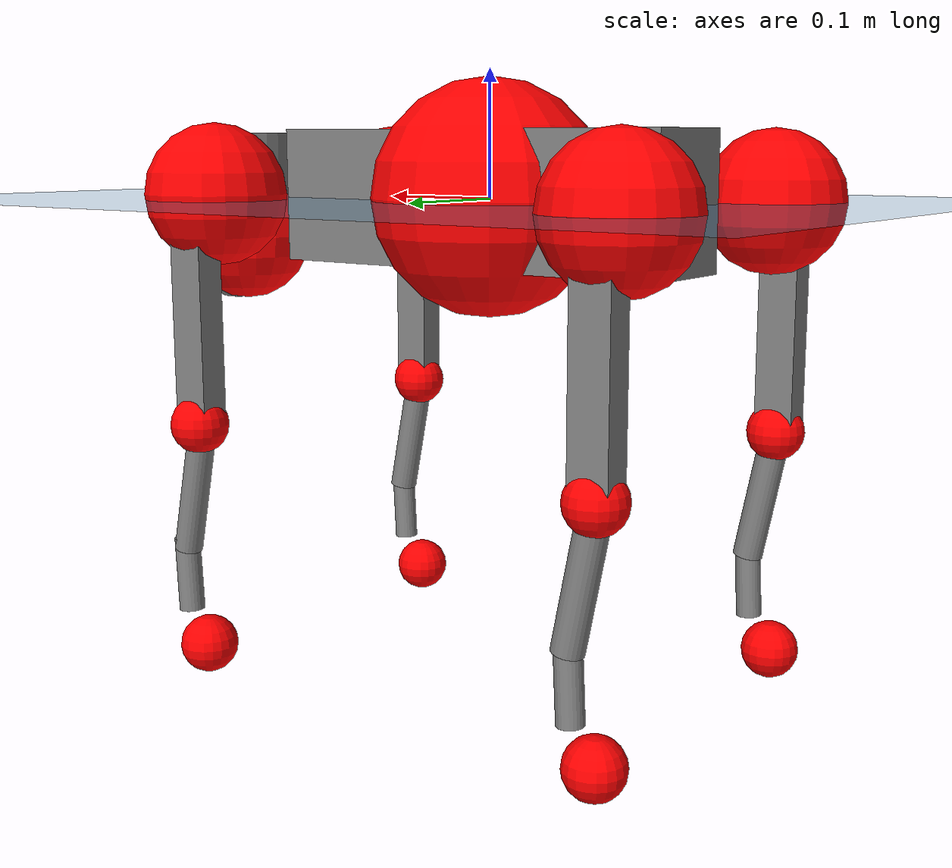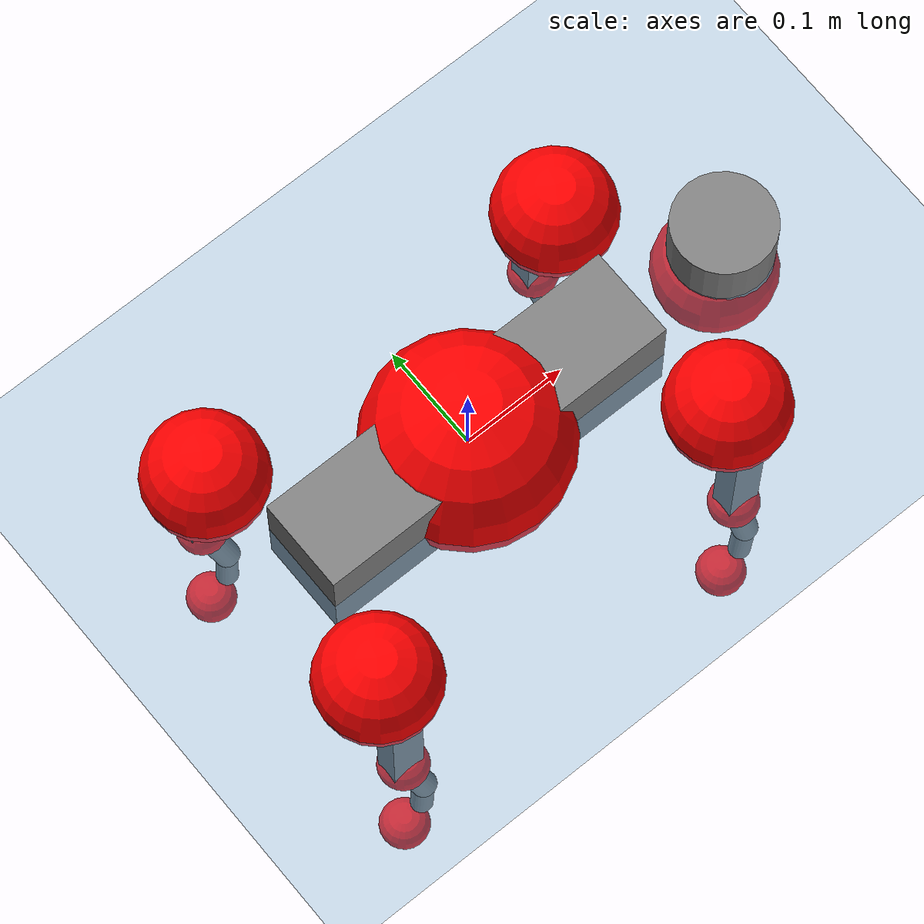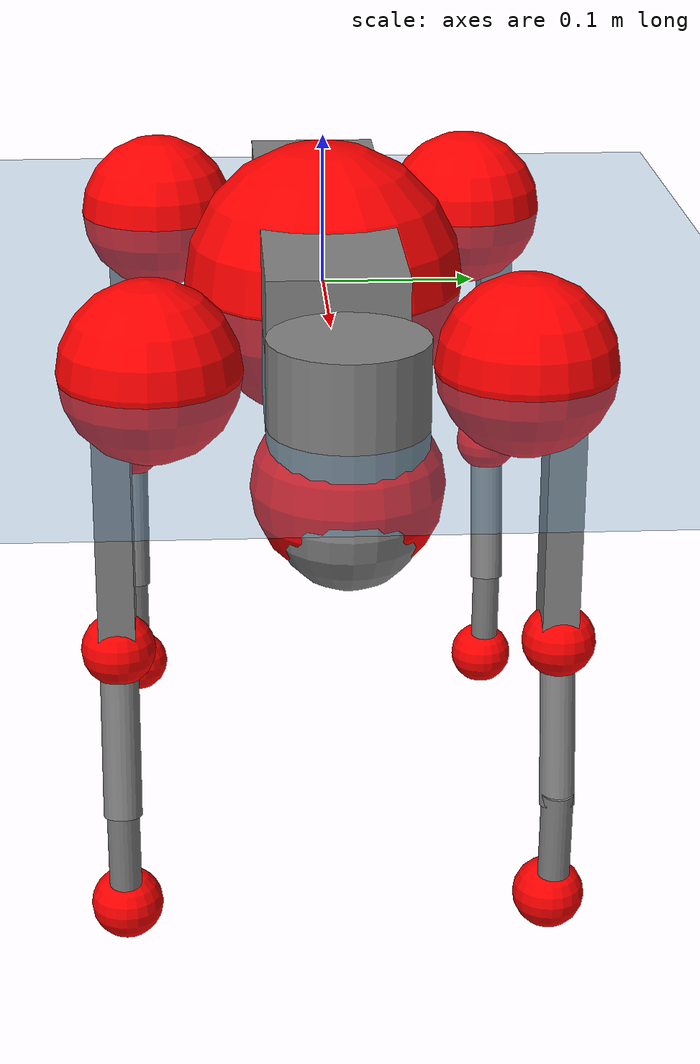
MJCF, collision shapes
<mujoco model="go2">
  <compiler angle="radian" assetdir="assets" balanceinertia="true" inertiafromgeom="false"/>

  <option timestep="0.005" density="1.2" viscosity="2e-05"/>

  <size nkey="1"/>

  <visual>
    <quality shadowsize="8192"/>
    <map shadowclip="0.5"/>
  </visual>

  <default>
    <default class="/">
      <geom contype="0" conaffinity="0" group="1" solref="-1000 -80"/>
      <site size="0.01 0.005 0.005" group="5"/>
      <general forcelimited="true" biastype="affine" gainprm="20" biasprm="0 -20 -0.5"/>
      <default class="go2">
        <joint armature="0.01" damping="0.01" frictionloss="0.2"/>
        <geom condim="1" margin="0.001"/>
        <default class="visual">
          <geom type="mesh" group="2"/>
        </default>
        <default class="collision">
          <geom group="3"/>
          <default class="foot">
            <geom size="0.022 0 0" condim="6" priority="1" friction="0.8 0.02 0.01" solimp="0.015 1 0.022"/>
          </default>
        </default>
        <default class="reward_collision_sphere">
          <geom group="5" rgba="1 0 0 1"/>
        </default>
      </default>
    </default>
  </default>

  <asset>
    <texture type="skybox" colorspace="auto" name="//unnamed_texture_0" builtin="gradient" rgb1="0.95 0.95 0.95" rgb2="0.95 0.95 0.95" width="100" height="600"/>
    <texture type="2d" colorspace="auto" name="texplane" builtin="checker" rgb1="0.345 0.575 0.748" rgb2="0.345 0.575 0.748" markrgb="1 1 1" width="512" height="512"/>
    <material name="MatPlane" class="/" texture="texplane" texuniform="true" texrepeat="2 2" specular="0.9"/>
    <material name="metal" class="/" rgba="0.9 0.95 0.95 1"/>
    <material name="black" class="/" rgba="0 0 0 1"/>
    <material name="white" class="/"/>
    <material name="gray" class="/" rgba="0.671705 0.692426 0.77427 1"/>
    <mesh name="base_0" class="/" file="base_0.obj"/>
    <mesh name="base_1" class="/" file="base_1.obj"/>
    <mesh name="base_2" class="/" file="base_2.obj"/>
    <mesh name="base_3" class="/" file="base_3.obj"/>
    <mesh name="base_4" class="/" file="base_4.obj"/>
    <mesh name="hip_0" class="/" file="hip_0.obj"/>
    <mesh name="hip_1" class="/" file="hip_1.obj"/>
    <mesh name="thigh_0" class="/" file="thigh_0.obj"/>
    <mesh name="thigh_1" class="/" file="thigh_1.obj"/>
    <mesh name="thigh_mirror_0" class="/" file="thigh_mirror_0.obj"/>
    <mesh name="thigh_mirror_1" class="/" file="thigh_mirror_1.obj"/>
    <mesh name="calf_0" class="/" file="calf_0.obj"/>
    <mesh name="calf_1" class="/" file="calf_1.obj"/>
    <mesh name="calf_mirror_0" class="/" file="calf_mirror_0.obj"/>
    <mesh name="calf_mirror_1" class="/" file="calf_mirror_1.obj"/>
    <mesh name="foot" class="/" file="foot.obj"/>
  </asset>

  <worldbody>
    <geom name="floor" class="/" size="100 100 0.125" type="plane" group="0" material="MatPlane"/>
    <light name="toplight_shadow" class="/" pos="0 0 5" dir="0.0990148 0.0990148 -0.990148" type="directional" ambient="0.04 0.04 0.04" diffuse="0.55 0.55 0.55" specular="0.12 0.12 0.12"/>
    <light name="toplight_fill" class="/" pos="0 0 5" dir="0.0990148 0.0990148 -0.990148" type="directional" castshadow="false" ambient="0.04 0.04 0.04" diffuse="0.3 0.3 0.3" specular="0.08 0.08 0.08"/>
    <body name="trunk" childclass="go2" pos="0.000375552 0.000514506 0.000960653" quat="1 -0.000353972 -2.84922e-05 -6.54631e-06">
      <inertial pos="0.0212969 -0.000780357 -0.00475429" quat="-0.000486222 0.71402 -0.00138415 0.700123" mass="5.69518" diaginertia="0.0938986 0.0855189 0.0123451"/>
      <joint name="//unnamed_joint_0" type="free" armature="0" damping="0" frictionloss="0"/>
      <geom name="//unnamed_geom_1" class="visual" material="black" mesh="base_0"/>
      <geom name="//unnamed_geom_2" class="visual" material="black" mesh="base_1"/>
      <geom name="//unnamed_geom_3" class="visual" material="black" mesh="base_2"/>
      <geom name="//unnamed_geom_4" class="visual" material="white" mesh="base_3"/>
      <geom name="//unnamed_geom_5" class="visual" material="gray" mesh="base_4"/>
      <geom name="trunk_1" class="collision" size="0.176229 0.0437996 0.0534027" type="box"/>
      <geom name="trunk_2" class="collision" size="0.0468445 0.04216" pos="0.27645 0 0.00868031" type="cylinder"/>
      <geom name="trunk_3" class="collision" size="0.0440338" pos="0.28421 0 -0.0520818"/>
      <geom name="//unnamed_geom_9" class="reward_collision_sphere" size="0.0936889"/>
      <geom name="//unnamed_geom_10" class="reward_collision_sphere" size="0.0562134" pos="0.2716 0 -0.0390614"/>
      <site name="imu" pos="-0.0293625 -0.00835903 0.0399561" size="0.00936889"/>
      <camera name="track" pos="0 -1.94528 0" quat="0.707107 0.707107 0 0" mode="trackcom"/>
      <camera name="ego_camera" pos="0.30264 0 0.0390614" quat="-0.5 -0.5 0.5 0.5"/>
      <body name="FL_hip" pos="0.187173 0.0448298 0.00237402" quat="1 0.000248056 -0.0006636 -4.65138e-06">
        <inertial pos="-0.00418816 0.00215319 -0.000161297" quat="0.496972 0.500437 0.505007 0.497544" mass="0.564941" diaginertia="0.000769693 0.000526318 0.000236809"/>
        <joint name="FL_hip_joint" pos="0 0 0" axis="0.999996 0.0023679 -0.00182061" range="-1.02942 1.04826" armature="0.00929282" damping="0.00964589" frictionloss="0.182561"/>
        <geom name="//unnamed_geom_11" class="visual" material="metal" mesh="hip_0"/>
        <geom name="//unnamed_geom_12" class="visual" material="gray" mesh="hip_1"/>
        <geom name="//unnamed_geom_13" class="collision" size="0.0430969 0.0187378" pos="0 0.0778111 0" quat="0.707107 0.707107 0 0" type="cylinder"/>
        <geom name="//unnamed_geom_14" class="reward_collision_sphere" size="0.0562134" pos="0 0.0680847 0"/>
        <body name="FL_thigh" pos="-0.000123456 0.0928027 0.00208859" quat="1 5.19343e-05 -0.000252584 -9.65782e-05">
          <inertial pos="-0.00378627 -0.022609 -0.0299455" quat="0.830051 0.0847452 -0.0205685 0.550827" mass="0.938654" diaginertia="0.0051248 0.00512745 0.000434005"/>
          <joint name="FL_thigh_joint" pos="0 0 0" axis="-7.24943e-05 1 0.000140579" range="-1.57295 3.52426" armature="0.00972748" damping="0" frictionloss="0.187883"/>
          <geom name="//unnamed_geom_15" class="visual" material="metal" mesh="thigh_0"/>
          <geom name="//unnamed_geom_16" class="visual" material="gray" mesh="thigh_1"/>
          <geom name="//unnamed_geom_17" class="collision" size="0.0997787 0.0114769 0.0159271" pos="0 0 -0.0924453" quat="0.707107 0 0.707107 0" type="box"/>
          <body name="FL_calf" pos="0.000861435 0.00115808 -0.185317" quat="1 -1.32535e-05 1.53807e-05 -0.000169749">
            <inertial pos="0.00653389 0.000511612 -0.122611" quat="0.710871 0.00223644 -0.00457095 0.703304" mass="0.200498" diaginertia="0.00126958 0.00126844 2.60906e-05"/>
            <joint name="FL_calf_joint" pos="0 0 0" axis="-0.00497625 0.999987 0.00145407" range="-2.73664 -0.847959" armature="0.009276" damping="0.00439306" frictionloss="0.183229"/>
            <geom name="//unnamed_geom_18" class="visual" material="gray" mesh="calf_0"/>
            <geom name="//unnamed_geom_19" class="visual" material="black" mesh="calf_1"/>
            <geom name="FL_calf0" class="collision" size="0.0112427 0.0562134" pos="0.00775999 0 -0.0520818" quat="0.994493 0 -0.104807 0" type="cylinder"/>
            <geom name="//unnamed_geom_21" class="collision" size="0.0103058 0.0304489" pos="0.0194 0 -0.128469" quat="0.999688 0 0.0249974 0" type="cylinder"/>
            <geom name="//unnamed_geom_22" class="visual" pos="0 0 -0.184891" quat="1 0 0 0" material="black" mesh="foot"/>
            <geom name="FL_foot" class="foot" size="0.0169279" pos="-0.00194 0 -0.184891"/>
            <geom name="//unnamed_geom_24" class="reward_collision_sphere" size="0.0234222"/>
            <geom name="//unnamed_geom_25" class="reward_collision_sphere" size="0.0234222" pos="-0.00194 0 -0.184891"/>
            <site name="FL_foot" class="foot" pos="-0.00194 0 -0.184891" size="0.00936889"/>
          </body>
        </body>
      </body>
      <body name="FR_hip" pos="0.187198 -0.0454805 0.00179964" quat="1 1.6485e-06 -7.19544e-06 -7.90476e-05">
        <inertial pos="-0.0050601 -0.00123695 -0.000629239" quat="0.497212 0.503623 0.503593 0.495519" mass="0.566618" diaginertia="0.000779635 0.000520951 0.00024144"/>
        <joint name="FR_hip_joint" pos="0 0 0" axis="0.999999 0.00109164 0.00116421" stiffness="0.00617071" range="-1.05398 1.04754" armature="0.00932619" damping="0.0123179" frictionloss="0.182582"/>
        <geom name="//unnamed_geom_26" class="visual" pos="0 9.11302e-10 3.90876e-08" quat="4.63268e-05 1 0 0" material="metal" mesh="hip_0"/>
        <geom name="//unnamed_geom_27" class="visual" pos="0 1.47733e-09 -9.66786e-08" quat="4.63268e-05 1 0 0" material="gray" mesh="hip_1"/>
        <geom name="//unnamed_geom_28" class="collision" size="0.0430969 0.0187378" pos="0 -0.0778111 0" quat="0.707107 0.707107 0 0" type="cylinder"/>
        <geom name="//unnamed_geom_29" class="reward_collision_sphere" size="0.0562134" pos="0 -0.0680847 0"/>
        <body name="FR_thigh" pos="-0.000685823 -0.0926549 0.000749984" quat="1 0.000155912 8.12266e-06 0.000115514">
          <inertial pos="-0.00373744 0.0216981 -0.0294931" quat="0.547902 -0.0128499 0.0870138 0.831905" mass="0.95668" diaginertia="0.00524382 0.0051575 0.000439396"/>
          <joint name="FR_thigh_joint" pos="0 0 0" axis="0.000259105 -1 5.39012e-05" range="-3.5145 1.57078" armature="0.00933471" damping="0.0140747" frictionloss="0.189513"/>
          <geom name="//unnamed_geom_30" class="visual" material="metal" mesh="thigh_mirror_0"/>
          <geom name="//unnamed_geom_31" class="visual" material="gray" mesh="thigh_mirror_1"/>
          <geom name="//unnamed_geom_32" class="collision" size="0.0997787 0.0114769 0.0159271" pos="0 0 -0.0924453" quat="0.707107 0 0.707107 0" type="box"/>
          <body name="FR_calf" pos="-0.000339231 0.000246679 -0.184004" quat="1 -1.84499e-06 -5.94719e-06 -5.14277e-06">
            <inertial pos="0.00645091 0.000536539 -0.121213" quat="0.706349 -0.0022302 0.00227294 0.707857" mass="0.194197" diaginertia="0.00123806 0.00127093 2.53331e-05"/>
            <joint name="FR_calf_joint" pos="0 0 0" axis="-0.00353921 -0.999985 -0.00416809" range="0.836317 2.74136" armature="0.00924538" damping="0.00811844" frictionloss="0.187131"/>
            <geom name="//unnamed_geom_33" class="visual" material="gray" mesh="calf_mirror_0"/>
            <geom name="//unnamed_geom_34" class="visual" material="black" mesh="calf_mirror_1"/>
            <geom name="FR_calf0" class="collision" size="0.0121796 0.0562134" pos="0.00969999 0 -0.0520818" quat="0.995004 0 -0.0998334 0" type="cylinder"/>
            <geom name="//unnamed_geom_36" class="collision" size="0.0103058 0.0304489" pos="0.0194 0 -0.128469" quat="0.999688 0 0.0249974 0" type="cylinder"/>
            <geom name="//unnamed_geom_37" class="visual" pos="0 0 -0.184891" quat="1 0 0 0" material="black" mesh="foot"/>
            <geom name="FR_foot" class="foot" size="0.0223517" pos="-0.00194 0 -0.184891"/>
            <geom name="//unnamed_geom_39" class="reward_collision_sphere" size="0.0234222"/>
            <geom name="//unnamed_geom_40" class="reward_collision_sphere" size="0.0234222" pos="-0.00194 0 -0.184891"/>
            <site name="FR_foot" class="foot" pos="-0.00194 0 -0.184891" size="0.00936889"/>
          </body>
        </body>
      </body>
      <body name="RL_hip" pos="-0.187829 0.0462816 -0.00155095" quat="1 0.000446156 -0.000237927 3.06238e-05">
        <inertial pos="0.00533555 0.00189708 -0.00137248" quat="0.504531 0.499822 0.497799 0.497818" mass="0.560759" diaginertia="0.000760108 0.000519648 0.000235437"/>
        <joint name="RL_hip_joint" pos="0 0 0" axis="-0.999898 -0.00524142 -0.0133228" range="-1.01752 1.06203" armature="0.00933492" damping="0.00598412" frictionloss="0.195155"/>
        <geom name="//unnamed_geom_41" class="visual" pos="-8.88305e-10 0 -1.74128e-07" quat="4.63268e-05 0 1 0" material="metal" mesh="hip_0"/>
        <geom name="//unnamed_geom_42" class="visual" pos="-1.44005e-09 0 -1.54427e-07" quat="4.63268e-05 0 1 0" material="gray" mesh="hip_1"/>
        <geom name="//unnamed_geom_43" class="collision" size="0.0430969 0.0187378" pos="0 0.0778111 0" quat="0.707107 0.707107 0 0" type="cylinder"/>
        <geom name="//unnamed_geom_44" class="reward_collision_sphere" size="0.0562134" pos="0 0.0680847 0"/>
        <body name="RL_thigh" pos="-7.45946e-05 0.0925119 -0.00140011" quat="1 5.10393e-06 1.23058e-05 -2.60338e-05">
          <inertial pos="-0.00419878 -0.0209974 -0.0301032" quat="0.831531 0.0857412 -0.0199187 0.548459" mass="0.931768" diaginertia="0.00498246 0.00501178 0.000423554"/>
          <joint name="RL_thigh_joint" pos="0 0 0" axis="0.00125632 0.999996 0.00250804" stiffness="0.00132371" range="-0.539962 4.53495" armature="0.00904362" damping="0.0109206" frictionloss="0.187287"/>
          <geom name="//unnamed_geom_45" class="visual" material="metal" mesh="thigh_0"/>
          <geom name="//unnamed_geom_46" class="visual" material="gray" mesh="thigh_1"/>
          <geom name="//unnamed_geom_47" class="collision" size="0.0997787 0.0114769 0.0159271" pos="0 0 -0.0924453" quat="0.707107 0 0.707107 0" type="box"/>
          <body name="RL_calf" pos="0.00104069 -0.00192992 -0.185012" quat="1 -9.57784e-05 0.000157633 0.000114788">
            <inertial pos="0.00517526 0.000391898 -0.123261" quat="0.710505 0.00114617 -0.00409281 0.703679" mass="0.199299" diaginertia="0.00128324 0.00126318 2.64167e-05"/>
            <joint name="RL_calf_joint" pos="0 0 0" axis="-0.00997779 0.999939 0.00463558" range="-2.729 -0.835591" armature="0.00966334" damping="0.000506998" frictionloss="0.179577"/>
            <geom name="//unnamed_geom_48" class="visual" material="gray" mesh="calf_0"/>
            <geom name="//unnamed_geom_49" class="visual" material="black" mesh="calf_1"/>
            <geom name="RL_calf0" class="collision" size="0.0121796 0.0562134" pos="0.00969999 0 -0.0520818" quat="0.995004 0 -0.0998334 0" type="cylinder"/>
            <geom name="//unnamed_geom_51" class="collision" size="0.0103058 0.0304489" pos="0.0194 0 -0.128469" quat="0.999688 0 0.0249974 0" type="cylinder"/>
            <geom name="//unnamed_geom_52" class="visual" pos="0 0 -0.184891" quat="1 0 0 0" material="black" mesh="foot"/>
            <geom name="RL_foot" class="foot" size="0.0184791" pos="-0.00194 0 -0.184891"/>
            <geom name="//unnamed_geom_54" class="reward_collision_sphere" size="0.0234222"/>
            <geom name="//unnamed_geom_55" class="reward_collision_sphere" size="0.0234222" pos="-0.00194 0 -0.184891"/>
            <site name="RL_foot" class="foot" pos="-0.00194 0 -0.184891" size="0.00936889"/>
          </body>
        </body>
      </body>
      <body name="RR_hip" pos="-0.187682 -0.045719 -0.00189045" quat="1 -0.000303595 -8.95879e-05 0.000230166">
        <inertial pos="0.00490561 -0.00124979 0.000365312" quat="0.499353 0.496903 0.498262 0.505438" mass="0.541092" diaginertia="0.000740493 0.000506596 0.000232488"/>
        <joint name="RR_hip_joint" pos="0 0 0" axis="-0.999991 -0.00355542 -0.00217041" range="-1.06296 1.04511" armature="0.00981531" damping="0.00180117" frictionloss="0.181534"/>
        <geom name="//unnamed_geom_56" class="visual" pos="8.88396e-10 9.11302e-10 -2.13216e-07" quat="2.14617e-09 4.63268e-05 4.63268e-05 -1" material="metal" mesh="hip_0"/>
        <geom name="//unnamed_geom_57" class="visual" pos="1.43982e-09 1.47733e-09 -5.77483e-08" quat="2.14617e-09 4.63268e-05 4.63268e-05 -1" material="gray" mesh="hip_1"/>
        <geom name="//unnamed_geom_58" class="collision" size="0.0430969 0.0187378" pos="0 -0.0778111 0" quat="0.707107 0.707107 0 0" type="cylinder"/>
        <geom name="//unnamed_geom_59" class="reward_collision_sphere" size="0.0562134" pos="0 -0.0680847 0"/>
        <body name="RR_thigh" pos="0.000554351 -0.093331 -0.000124844" quat="1 3.6091e-05 8.11121e-06 -4.69123e-06">
          <inertial pos="-0.00273688 0.0214642 -0.0284981" quat="0.551473 -0.0199736 0.084617 0.829649" mass="0.941741" diaginertia="0.00503313 0.00505245 0.000432634"/>
          <joint name="RR_thigh_joint" pos="0 0 0" axis="0.00666977 -0.999936 -0.00919189" range="-4.5609 0.540328" armature="0.00919349" damping="0.0116928" frictionloss="0.184531"/>
          <geom name="//unnamed_geom_60" class="visual" material="metal" mesh="thigh_mirror_0"/>
          <geom name="//unnamed_geom_61" class="visual" material="gray" mesh="thigh_mirror_1"/>
          <geom name="//unnamed_geom_62" class="collision" size="0.0997787 0.0114769 0.0159271" pos="0 0 -0.0924453" quat="0.707107 0 0.707107 0" type="box"/>
          <body name="RR_calf" pos="0.00218736 -0.000252497 -0.18555" quat="1 -3.3143e-05 3.0462e-05 0.00011011">
            <inertial pos="0.00534122 0.000644177 -0.12273" quat="0.702149 -0.00272922 0.0014704 0.712024" mass="0.200333" diaginertia="0.00128381 0.001281 2.63373e-05"/>
            <joint name="RR_calf_joint" pos="0 0 0" axis="0.00762719 -0.999971 0.000516845" range="0.838747 2.70895" armature="0.00977663" damping="0.00414755" frictionloss="0.188564"/>
            <geom name="//unnamed_geom_63" class="visual" material="gray" mesh="calf_mirror_0"/>
            <geom name="//unnamed_geom_64" class="visual" material="black" mesh="calf_mirror_1"/>
            <geom name="RR_calf0" class="collision" size="0.0121796 0.0562134" pos="0.00969999 0 -0.0520818" quat="0.995004 0 -0.0998334 0" type="cylinder"/>
            <geom name="//unnamed_geom_66" class="collision" size="0.0103058 0.0304489" pos="0.0194 0 -0.128469" quat="0.999688 0 0.0249974 0" type="cylinder"/>
            <geom name="//unnamed_geom_67" class="visual" pos="0 0 -0.184891" quat="1 0 0 0" material="black" mesh="foot"/>
            <geom name="RR_foot" class="foot" size="0.0231061" pos="-0.00194 0 -0.184891"/>
            <geom name="//unnamed_geom_69" class="reward_collision_sphere" size="0.0234222"/>
            <geom name="//unnamed_geom_70" class="reward_collision_sphere" size="0.0234222" pos="-0.00194 0 -0.184891"/>
            <site name="RR_foot" class="foot" pos="-0.00194 0 -0.184891" size="0.00936889"/>
          </body>
        </body>
      </body>
    </body>
  </worldbody>

  <contact>
    <pair class="/" geom1="floor" geom2="FL_foot" name="//unnamed_contact_0"/>
    <pair class="/" geom1="floor" geom2="FR_foot" name="//unnamed_contact_1"/>
    <pair class="/" geom1="floor" geom2="RL_foot" name="//unnamed_contact_2"/>
    <pair class="/" geom1="floor" geom2="RR_foot" name="//unnamed_contact_3"/>
  </contact>

  <actuator>
    <general name="FL_hip" class="/" joint="FL_hip_joint" forcerange="-22.622 22.622" gainprm="18.9939" biasprm="0 -18.9939 -0.473828"/>
    <general name="FL_thigh" class="/" joint="FL_thigh_joint" forcerange="-22.679 22.679" gainprm="18.9939" biasprm="0 -18.9939 -0.473828"/>
    <general name="FL_calf" class="/" joint="FL_calf_joint" forcerange="-41.0041 41.0041" gainprm="18.9939" biasprm="0 -18.9939 -0.473828"/>
    <general name="FR_hip" class="/" joint="FR_hip_joint" forcerange="-22.3503 22.3503" gainprm="18.9939" biasprm="0 -18.9939 -0.473828"/>
    <general name="FR_thigh" class="/" joint="FR_thigh_joint" forcerange="-21.4556 21.4556" gainprm="18.9939" biasprm="0 -18.9939 -0.473828"/>
    <general name="FR_calf" class="/" joint="FR_calf_joint" forcerange="-45.349 45.349" gainprm="18.9939" biasprm="0 -18.9939 -0.473828"/>
    <general name="RL_hip" class="/" joint="RL_hip_joint" forcerange="-23.0841 23.0841" gainprm="18.9939" biasprm="0 -18.9939 -0.473828"/>
    <general name="RL_thigh" class="/" joint="RL_thigh_joint" forcerange="-21.443 21.443" gainprm="18.9939" biasprm="0 -18.9939 -0.473828"/>
    <general name="RL_calf" class="/" joint="RL_calf_joint" forcerange="-42.1192 42.1192" gainprm="18.9939" biasprm="0 -18.9939 -0.473828"/>
    <general name="RR_hip" class="/" joint="RR_hip_joint" forcerange="-22.4617 22.4617" gainprm="18.9939" biasprm="0 -18.9939 -0.473828"/>
    <general name="RR_thigh" class="/" joint="RR_thigh_joint" forcerange="-20.875 20.875" gainprm="18.9939" biasprm="0 -18.9939 -0.473828"/>
    <general name="RR_calf" class="/" joint="RR_calf_joint" forcerange="-42.5062 42.5062" gainprm="18.9939" biasprm="0 -18.9939 -0.473828"/>
  </actuator>

  <sensor>
    <gyro site="imu" name="imu_angular_velocity"/>
    <velocimeter site="imu" name="imu_linear_velocity"/>
    <framelinvel objtype="site" objname="FL_foot" name="FL_foot_global_linear_velocity"/>
    <framelinvel objtype="site" objname="FR_foot" name="FR_foot_global_linear_velocity"/>
    <framelinvel objtype="site" objname="RL_foot" name="RL_foot_global_linear_velocity"/>
    <framelinvel objtype="site" objname="RR_foot" name="RR_foot_global_linear_velocity"/>
  </sensor>

  <keyframe>
    <key name="home" qpos="0 0 0.325 1 0 0 0 0.1 0.8 -1.5 -0.1 -0.8 1.5 -0.1 0.8 -1.5 0.1 -0.8 1.5"/>
  </keyframe>
</mujoco>
